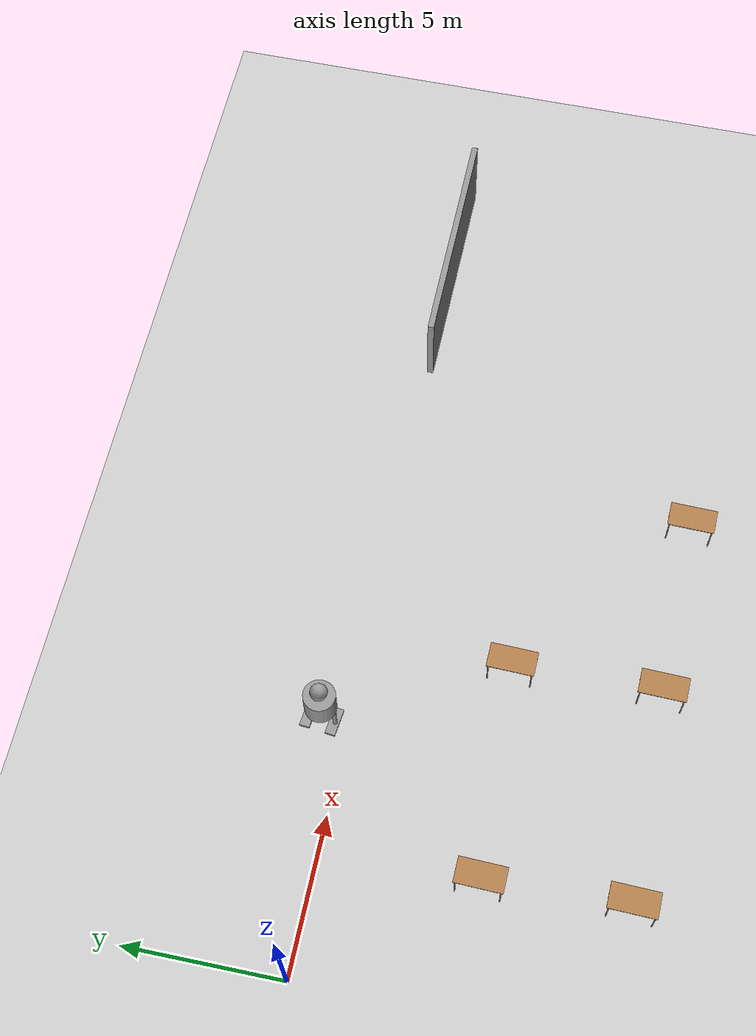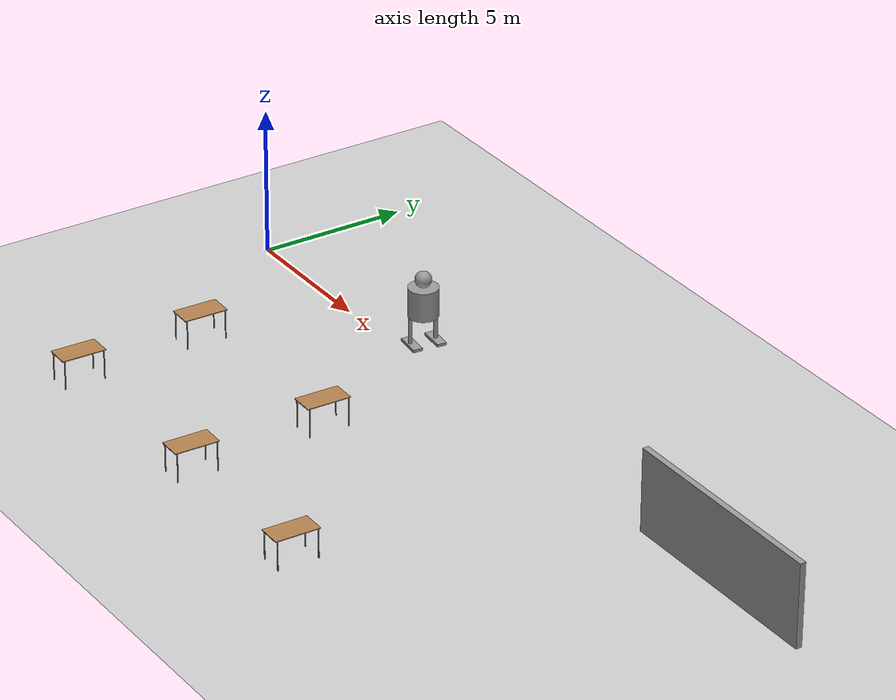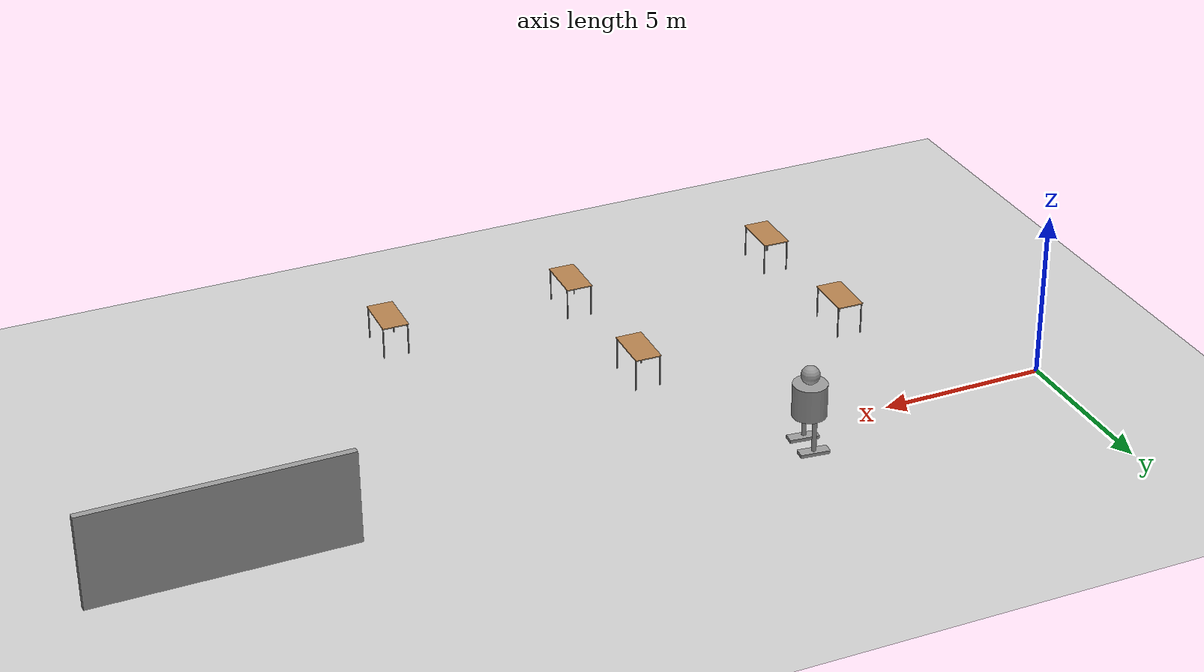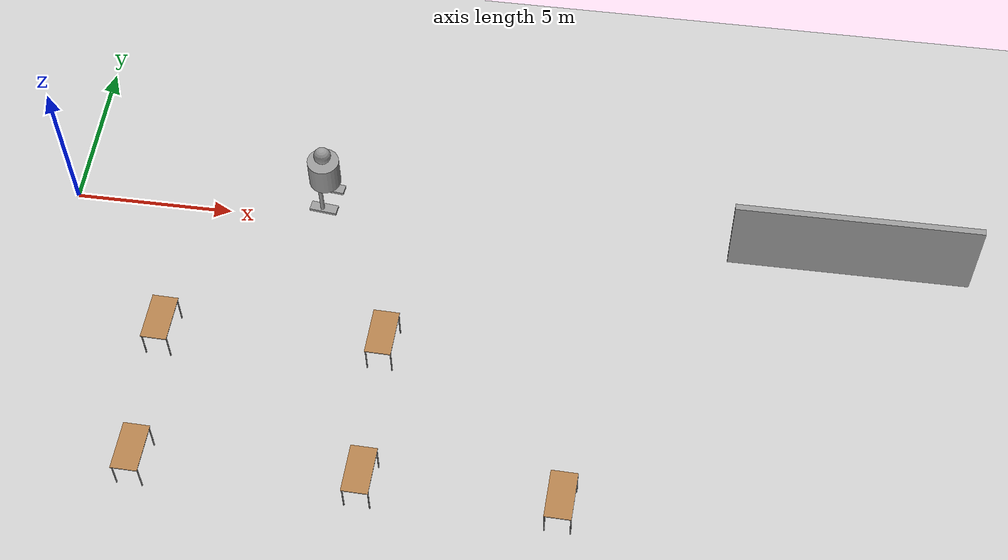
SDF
<sdf version="1.6">
 <world name="default">
  <model name="ground_plane">
   <static>1</static>
   <link name="link">
    <collision name="collision">
     <geometry><plane><normal>0 0 1</normal><size>100 100</size></plane></geometry>
     <surface>
      <contact><collide_bitmask>65535</collide_bitmask></contact>
      <friction><ode><mu>100</mu><mu2>50</mu2></ode></friction>
     </surface>
    </collision>
    <visual name="visual">
     <cast_shadows>0</cast_shadows>
     <geometry><plane><normal>0 0 1</normal><size>100 100</size></plane></geometry>
     <material>
      <script><uri>file://media/materials/scripts/gazebo.material</uri><name>Gazebo/Grey</name></script>
     </material>
    </visual>
   </link>
  </model>
  <model name="table_0">
   <static>1</static>
   <link name="link">
    <collision name="surface">
     <pose>0 0 1 0 -0 0</pose>
     <geometry><box><size>1.5 0.8 0.03</size></box></geometry>
     <surface><friction><ode><mu>0.6</mu><mu2>0.6</mu2></ode></friction></surface>
    </collision>
    <visual name="visual1">
     <pose>0 0 1 0 -0 0</pose>
     <geometry><box><size>1.5 0.8 0.03</size></box></geometry>
     <material>
      <script><uri>file://media/materials/scripts/gazebo.material</uri><name>Gazebo/Wood</name></script>
     </material>
    </visual>
    <collision name="front_left_leg">
     <pose>0.68 0.38 0.5 0 -0 0</pose>
     <geometry><cylinder><radius>0.02</radius><length>1</length></cylinder></geometry>
    </collision>
    <visual name="front_left_leg">
     <pose>0.68 0.38 0.5 0 -0 0</pose>
     <geometry><cylinder><radius>0.02</radius><length>1</length></cylinder></geometry>
     <material>
      <script><uri>file://media/materials/scripts/gazebo.material</uri><name>Gazebo/Grey</name></script>
     </material>
    </visual>
    <collision name="front_right_leg">
     <pose>0.68 -0.38 0.5 0 -0 0</pose>
     <geometry><cylinder><radius>0.02</radius><length>1</length></cylinder></geometry>
    </collision>
    <visual name="front_right_leg">
     <pose>0.68 -0.38 0.5 0 -0 0</pose>
     <geometry><cylinder><radius>0.02</radius><length>1</length></cylinder></geometry>
     <material>
      <script><uri>file://media/materials/scripts/gazebo.material</uri><name>Gazebo/Grey</name></script>
     </material>
    </visual>
    <collision name="back_right_leg">
     <pose>-0.68 -0.38 0.5 0 -0 0</pose>
     <geometry><cylinder><radius>0.02</radius><length>1</length></cylinder></geometry>
    </collision>
    <visual name="back_right_leg">
     <pose>-0.68 -0.38 0.5 0 -0 0</pose>
     <geometry><cylinder><radius>0.02</radius><length>1</length></cylinder></geometry>
     <material>
      <script><uri>file://media/materials/scripts/gazebo.material</uri><name>Gazebo/Grey</name></script>
     </material>
    </visual>
    <collision name="back_left_leg">
     <pose>-0.68 0.38 0.5 0 -0 0</pose>
     <geometry><cylinder><radius>0.02</radius><length>1</length></cylinder></geometry>
    </collision>
    <visual name="back_left_leg">
     <pose>-0.68 0.38 0.5 0 -0 0</pose>
     <geometry><cylinder><radius>0.02</radius><length>1</length></cylinder></geometry>
     <material>
      <script><uri>file://media/materials/scripts/gazebo.material</uri><name>Gazebo/Grey</name></script>
     </material>
    </visual>
   </link>
   <pose>16.6404 -9.26334 0 0 -0 1.54682</pose>
  </model>
  <model name="grey_wall">
   <static>1</static>
   <link name="link">
    <pose>0 0 1.4 0 -0 0</pose>
    <collision name="collision"><geometry><box><size>7.5 0.2 2.8</size></box></geometry></collision>
    <visual name="visual">
     <cast_shadows>0</cast_shadows>
     <geometry><box><size>7.5 0.2 2.8</size></box></geometry>
     <material>
      <script>
       <uri>model://grey_wall/materials/scripts</uri>
       <uri>model://grey_wall/materials/textures</uri>
       <name>vrc/grey_wall</name>
      </script>
     </material>
    </visual>
   </link>
   <pose>24.5737 0.166577 0 0 -0 0</pose>
  </model>
  <model name="table_0_clone">
   <static>1</static>
   <link name="link">
    <collision name="surface">
     <pose>0 0 1 0 -0 0</pose>
     <geometry><box><size>1.5 0.8 0.03</size></box></geometry>
     <surface><friction><ode><mu>0.6</mu><mu2>0.6</mu2></ode></friction></surface>
    </collision>
    <visual name="visual1">
     <pose>0 0 1 0 -0 0</pose>
     <geometry><box><size>1.5 0.8 0.03</size></box></geometry>
     <material>
      <script><uri>file://media/materials/scripts/gazebo.material</uri><name>Gazebo/Wood</name></script>
     </material>
    </visual>
    <collision name="front_left_leg">
     <pose>0.68 0.38 0.5 0 -0 0</pose>
     <geometry><cylinder><radius>0.02</radius><length>1</length></cylinder></geometry>
    </collision>
    <visual name="front_left_leg">
     <pose>0.68 0.38 0.5 0 -0 0</pose>
     <geometry><cylinder><radius>0.02</radius><length>1</length></cylinder></geometry>
     <material>
      <script><uri>file://media/materials/scripts/gazebo.material</uri><name>Gazebo/Grey</name></script>
     </material>
    </visual>
    <collision name="front_right_leg">
     <pose>0.68 -0.38 0.5 0 -0 0</pose>
     <geometry><cylinder><radius>0.02</radius><length>1</length></cylinder></geometry>
    </collision>
    <visual name="front_right_leg">
     <pose>0.68 -0.38 0.5 0 -0 0</pose>
     <geometry><cylinder><radius>0.02</radius><length>1</length></cylinder></geometry>
     <material>
      <script><uri>file://media/materials/scripts/gazebo.material</uri><name>Gazebo/Grey</name></script>
     </material>
    </visual>
    <collision name="back_right_leg">
     <pose>-0.68 -0.38 0.5 0 -0 0</pose>
     <geometry><cylinder><radius>0.02</radius><length>1</length></cylinder></geometry>
    </collision>
    <visual name="back_right_leg">
     <pose>-0.68 -0.38 0.5 0 -0 0</pose>
     <geometry><cylinder><radius>0.02</radius><length>1</length></cylinder></geometry>
     <material>
      <script><uri>file://media/materials/scripts/gazebo.material</uri><name>Gazebo/Grey</name></script>
     </material>
    </visual>
    <collision name="back_left_leg">
     <pose>-0.68 0.38 0.5 0 -0 0</pose>
     <geometry><cylinder><radius>0.02</radius><length>1</length></cylinder></geometry>
    </collision>
    <visual name="back_left_leg">
     <pose>-0.68 0.38 0.5 0 -0 0</pose>
     <geometry><cylinder><radius>0.02</radius><length>1</length></cylinder></geometry>
     <material>
      <script><uri>file://media/materials/scripts/gazebo.material</uri><name>Gazebo/Grey</name></script>
     </material>
    </visual>
   </link>
   <pose>10.8123 -9.19045 0 0 -0 1.54682</pose>
  </model>
  <model name="table_0_clone_0">
   <static>1</static>
   <link name="link">
    <collision name="surface">
     <pose>0 0 1 0 -0 0</pose>
     <geometry><box><size>1.5 0.8 0.03</size></box></geometry>
     <surface><friction><ode><mu>0.6</mu><mu2>0.6</mu2></ode></friction></surface>
    </collision>
    <visual name="visual1">
     <pose>0 0 1 0 -0 0</pose>
     <geometry><box><size>1.5 0.8 0.03</size></box></geometry>
     <material>
      <script><uri>file://media/materials/scripts/gazebo.material</uri><name>Gazebo/Wood</name></script>
     </material>
    </visual>
    <collision name="front_left_leg">
     <pose>0.68 0.38 0.5 0 -0 0</pose>
     <geometry><cylinder><radius>0.02</radius><length>1</length></cylinder></geometry>
    </collision>
    <visual name="front_left_leg">
     <pose>0.68 0.38 0.5 0 -0 0</pose>
     <geometry><cylinder><radius>0.02</radius><length>1</length></cylinder></geometry>
     <material>
      <script><uri>file://media/materials/scripts/gazebo.material</uri><name>Gazebo/Grey</name></script>
     </material>
    </visual>
    <collision name="front_right_leg">
     <pose>0.68 -0.38 0.5 0 -0 0</pose>
     <geometry><cylinder><radius>0.02</radius><length>1</length></cylinder></geometry>
    </collision>
    <visual name="front_right_leg">
     <pose>0.68 -0.38 0.5 0 -0 0</pose>
     <geometry><cylinder><radius>0.02</radius><length>1</length></cylinder></geometry>
     <material>
      <script><uri>file://media/materials/scripts/gazebo.material</uri><name>Gazebo/Grey</name></script>
     </material>
    </visual>
    <collision name="back_right_leg">
     <pose>-0.68 -0.38 0.5 0 -0 0</pose>
     <geometry><cylinder><radius>0.02</radius><length>1</length></cylinder></geometry>
    </collision>
    <visual name="back_right_leg">
     <pose>-0.68 -0.38 0.5 0 -0 0</pose>
     <geometry><cylinder><radius>0.02</radius><length>1</length></cylinder></geometry>
     <material>
      <script><uri>file://media/materials/scripts/gazebo.material</uri><name>Gazebo/Grey</name></script>
     </material>
    </visual>
    <collision name="back_left_leg">
     <pose>-0.68 0.38 0.5 0 -0 0</pose>
     <geometry><cylinder><radius>0.02</radius><length>1</length></cylinder></geometry>
    </collision>
    <visual name="back_left_leg">
     <pose>-0.68 0.38 0.5 0 -0 0</pose>
     <geometry><cylinder><radius>0.02</radius><length>1</length></cylinder></geometry>
     <material>
      <script><uri>file://media/materials/scripts/gazebo.material</uri><name>Gazebo/Grey</name></script>
     </material>
    </visual>
   </link>
   <pose>4.13003 -9.2976 0 0 -0 1.54682</pose>
  </model>
  <model name="table_0_clone_3">
   <static>1</static>
   <link name="link">
    <collision name="surface">
     <pose>0 0 1 0 -0 0</pose>
     <geometry><box><size>1.5 0.8 0.03</size></box></geometry>
     <surface><friction><ode><mu>0.6</mu><mu2>0.6</mu2></ode></friction></surface>
    </collision>
    <visual name="visual1">
     <pose>0 0 1 0 -0 0</pose>
     <geometry><box><size>1.5 0.8 0.03</size></box></geometry>
     <material>
      <script><uri>file://media/materials/scripts/gazebo.material</uri><name>Gazebo/Wood</name></script>
     </material>
    </visual>
    <collision name="front_left_leg">
     <pose>0.68 0.38 0.5 0 -0 0</pose>
     <geometry><cylinder><radius>0.02</radius><length>1</length></cylinder></geometry>
    </collision>
    <visual name="front_left_leg">
     <pose>0.68 0.38 0.5 0 -0 0</pose>
     <geometry><cylinder><radius>0.02</radius><length>1</length></cylinder></geometry>
     <material>
      <script><uri>file://media/materials/scripts/gazebo.material</uri><name>Gazebo/Grey</name></script>
     </material>
    </visual>
    <collision name="front_right_leg">
     <pose>0.68 -0.38 0.5 0 -0 0</pose>
     <geometry><cylinder><radius>0.02</radius><length>1</length></cylinder></geometry>
    </collision>
    <visual name="front_right_leg">
     <pose>0.68 -0.38 0.5 0 -0 0</pose>
     <geometry><cylinder><radius>0.02</radius><length>1</length></cylinder></geometry>
     <material>
      <script><uri>file://media/materials/scripts/gazebo.material</uri><name>Gazebo/Grey</name></script>
     </material>
    </visual>
    <collision name="back_right_leg">
     <pose>-0.68 -0.38 0.5 0 -0 0</pose>
     <geometry><cylinder><radius>0.02</radius><length>1</length></cylinder></geometry>
    </collision>
    <visual name="back_right_leg">
     <pose>-0.68 -0.38 0.5 0 -0 0</pose>
     <geometry><cylinder><radius>0.02</radius><length>1</length></cylinder></geometry>
     <material>
      <script><uri>file://media/materials/scripts/gazebo.material</uri><name>Gazebo/Grey</name></script>
     </material>
    </visual>
    <collision name="back_left_leg">
     <pose>-0.68 0.38 0.5 0 -0 0</pose>
     <geometry><cylinder><radius>0.02</radius><length>1</length></cylinder></geometry>
    </collision>
    <visual name="back_left_leg">
     <pose>-0.68 0.38 0.5 0 -0 0</pose>
     <geometry><cylinder><radius>0.02</radius><length>1</length></cylinder></geometry>
     <material>
      <script><uri>file://media/materials/scripts/gazebo.material</uri><name>Gazebo/Grey</name></script>
     </material>
    </visual>
   </link>
   <pose>3.9388 -4.84343 0 0 -0 1.54682</pose>
  </model>
  <model name="table_0_clone_4">
   <static>1</static>
   <link name="link">
    <collision name="surface">
     <pose>0 0 1 0 -0 0</pose>
     <geometry><box><size>1.5 0.8 0.03</size></box></geometry>
     <surface><friction><ode><mu>0.6</mu><mu2>0.6</mu2></ode></friction></surface>
    </collision>
    <visual name="visual1">
     <pose>0 0 1 0 -0 0</pose>
     <geometry><box><size>1.5 0.8 0.03</size></box></geometry>
     <material>
      <script><uri>file://media/materials/scripts/gazebo.material</uri><name>Gazebo/Wood</name></script>
     </material>
    </visual>
    <collision name="front_left_leg">
     <pose>0.68 0.38 0.5 0 -0 0</pose>
     <geometry><cylinder><radius>0.02</radius><length>1</length></cylinder></geometry>
    </collision>
    <visual name="front_left_leg">
     <pose>0.68 0.38 0.5 0 -0 0</pose>
     <geometry><cylinder><radius>0.02</radius><length>1</length></cylinder></geometry>
     <material>
      <script><uri>file://media/materials/scripts/gazebo.material</uri><name>Gazebo/Grey</name></script>
     </material>
    </visual>
    <collision name="front_right_leg">
     <pose>0.68 -0.38 0.5 0 -0 0</pose>
     <geometry><cylinder><radius>0.02</radius><length>1</length></cylinder></geometry>
    </collision>
    <visual name="front_right_leg">
     <pose>0.68 -0.38 0.5 0 -0 0</pose>
     <geometry><cylinder><radius>0.02</radius><length>1</length></cylinder></geometry>
     <material>
      <script><uri>file://media/materials/scripts/gazebo.material</uri><name>Gazebo/Grey</name></script>
     </material>
    </visual>
    <collision name="back_right_leg">
     <pose>-0.68 -0.38 0.5 0 -0 0</pose>
     <geometry><cylinder><radius>0.02</radius><length>1</length></cylinder></geometry>
    </collision>
    <visual name="back_right_leg">
     <pose>-0.68 -0.38 0.5 0 -0 0</pose>
     <geometry><cylinder><radius>0.02</radius><length>1</length></cylinder></geometry>
     <material>
      <script><uri>file://media/materials/scripts/gazebo.material</uri><name>Gazebo/Grey</name></script>
     </material>
    </visual>
    <collision name="back_left_leg">
     <pose>-0.68 0.38 0.5 0 -0 0</pose>
     <geometry><cylinder><radius>0.02</radius><length>1</length></cylinder></geometry>
    </collision>
    <visual name="back_left_leg">
     <pose>-0.68 0.38 0.5 0 -0 0</pose>
     <geometry><cylinder><radius>0.02</radius><length>1</length></cylinder></geometry>
     <material>
      <script><uri>file://media/materials/scripts/gazebo.material</uri><name>Gazebo/Grey</name></script>
     </material>
    </visual>
   </link>
   <pose>10.6876 -4.5176 0 0 -0 1.54682</pose>
  </model>
  <model name="HumanoidRobot">
   <link name="link_0">
    <pose>0.00607 -0.402485 -0.763094 0 -0 0</pose>
    <inertial>
     <mass>0.0269632</mass>
     <inertia>
      <ixx>0.00025348</ixx>
      <ixy>0</ixy>
      <ixz>0</ixz>
      <iyy>0.00171945</iyy>
      <iyz>0</iyz>
      <izz>0.00193117</izz>
     </inertia>
    </inertial>
    <visual name="visual">
     <geometry><box><size>0.869453 0.321744 0.096398</size></box></geometry>
     <material>
      <lighting>1</lighting>
      <script><uri>file://media/materials/scripts/gazebo.material</uri><name>Gazebo/Grey</name></script>
      <shader type="pixel"><normal_map>__default__</normal_map></shader>
      <ambient>0.3 0.3 0.3 1</ambient>
      <diffuse>0.7 0.7 0.7 1</diffuse>
      <specular>0.01 0.01 0.01 1</specular>
      <emissive>0 0 0 1</emissive>
     </material>
    </visual>
    <collision name="collision">
     <geometry><box><size>0.869453 0.321744 0.096398</size></box></geometry>
     <surface>
      <friction>
       <ode><mu>1</mu><mu2>1</mu2><fdir1>0 0 0</fdir1><slip1>0</slip1><slip2>0</slip2></ode>
       <torsional>
        <coefficient>1</coefficient>
        <patch_radius>0</patch_radius>
        <surface_radius>0</surface_radius>
        <use_patch_radius>1</use_patch_radius>
        <ode><slip>0</slip></ode>
       </torsional>
      </friction>
      <bounce><restitution_coefficient>0</restitution_coefficient><threshold>1e+06</threshold></bounce>
      <contact>
       <collide_without_contact>0</collide_without_contact>
       <collide_without_contact_bitmask>1</collide_without_contact_bitmask>
       <collide_bitmask>1</collide_bitmask>
       <ode>
        <soft_cfm>0</soft_cfm>
        <soft_erp>0.2</soft_erp>
        <kp>1e+13</kp>
        <kd>1</kd>
        <max_vel>0.01</max_vel>
        <min_depth>0</min_depth>
       </ode>
       <bullet>
        <split_impulse>1</split_impulse>
        <split_impulse_penetration_threshold>-0.01</split_impulse_penetration_threshold>
        <soft_cfm>0</soft_cfm>
        <soft_erp>0.2</soft_erp>
        <kp>1e+13</kp>
        <kd>1</kd>
       </bullet>
      </contact>
     </surface>
    </collision>
   </link>
   <link name="link_0_clone">
    <pose>0.00607 0.426759 -0.763093 0 -0 0</pose>
    <inertial>
     <mass>0.0269632</mass>
     <inertia>
      <ixx>0.00025348</ixx>
      <ixy>0</ixy>
      <ixz>0</ixz>
      <iyy>0.00171945</iyy>
      <iyz>0</iyz>
      <izz>0.00193117</izz>
     </inertia>
    </inertial>
    <visual name="visual">
     <geometry><box><size>0.869453 0.321744 0.096398</size></box></geometry>
     <material>
      <lighting>1</lighting>
      <script><uri>file://media/materials/scripts/gazebo.material</uri><name>Gazebo/Grey</name></script>
      <shader type="pixel"><normal_map>__default__</normal_map></shader>
      <ambient>0.3 0.3 0.3 1</ambient>
      <diffuse>0.7 0.7 0.7 1</diffuse>
      <specular>0.01 0.01 0.01 1</specular>
      <emissive>0 0 0 1</emissive>
     </material>
    </visual>
    <collision name="collision">
     <geometry><box><size>0.869453 0.321744 0.096398</size></box></geometry>
     <surface>
      <friction>
       <ode><mu>1</mu><mu2>1</mu2><fdir1>0 0 0</fdir1><slip1>0</slip1><slip2>0</slip2></ode>
       <torsional>
        <coefficient>1</coefficient>
        <patch_radius>0</patch_radius>
        <surface_radius>0</surface_radius>
        <use_patch_radius>1</use_patch_radius>
        <ode><slip>0</slip></ode>
       </torsional>
      </friction>
      <bounce><restitution_coefficient>0</restitution_coefficient><threshold>1e+06</threshold></bounce>
      <contact>
       <collide_without_contact>0</collide_without_contact>
       <collide_without_contact_bitmask>1</collide_without_contact_bitmask>
       <collide_bitmask>1</collide_bitmask>
       <ode>
        <soft_cfm>0</soft_cfm>
        <soft_erp>0.2</soft_erp>
        <kp>1e+13</kp>
        <kd>1</kd>
        <max_vel>0.01</max_vel>
        <min_depth>0</min_depth>
       </ode>
       <bullet>
        <split_impulse>1</split_impulse>
        <split_impulse_penetration_threshold>-0.01</split_impulse_penetration_threshold>
        <soft_cfm>0</soft_cfm>
        <soft_erp>0.2</soft_erp>
        <kp>1e+13</kp>
        <kd>1</kd>
       </bullet>
      </contact>
     </surface>
    </collision>
   </link>
   <link name="link_1">
    <pose>-0.030345 -0.4389 -0.311292 0 -0 0</pose>
    <inertial>
     <mass>0.0180474</mass>
     <inertia>
      <ixx>0.00152431</ixx>
      <ixy>0</ixy>
      <ixz>0</ixz>
      <iyy>0.00152431</iyy>
      <iyz>0</iyz>
      <izz>4.07136e-05</izz>
     </inertia>
    </inertial>
    <visual name="visual">
     <geometry><cylinder><radius>0.0671703</radius><length>1</length></cylinder></geometry>
     <material>
      <lighting>1</lighting>
      <script><uri>file://media/materials/scripts/gazebo.material</uri><name>Gazebo/Grey</name></script>
      <shader type="pixel"/>
      <ambient>0.3 0.3 0.3 1</ambient>
      <diffuse>0.7 0.7 0.7 1</diffuse>
      <specular>0.01 0.01 0.01 1</specular>
      <emissive>0 0 0 1</emissive>
     </material>
    </visual>
    <collision name="collision">
     <geometry><cylinder><radius>0.06717</radius><length>1</length></cylinder></geometry>
     <surface>
      <friction>
       <ode><mu>1</mu><mu2>1</mu2><fdir1>0 0 0</fdir1><slip1>0</slip1><slip2>0</slip2></ode>
       <torsional>
        <coefficient>1</coefficient>
        <patch_radius>0</patch_radius>
        <surface_radius>0</surface_radius>
        <use_patch_radius>1</use_patch_radius>
        <ode><slip>0</slip></ode>
       </torsional>
      </friction>
      <bounce><restitution_coefficient>0</restitution_coefficient><threshold>1e+06</threshold></bounce>
      <contact>
       <collide_without_contact>0</collide_without_contact>
       <collide_without_contact_bitmask>1</collide_without_contact_bitmask>
       <collide_bitmask>1</collide_bitmask>
       <ode>
        <soft_cfm>0</soft_cfm>
        <soft_erp>0.2</soft_erp>
        <kp>1e+13</kp>
        <kd>1</kd>
        <max_vel>0.01</max_vel>
        <min_depth>0</min_depth>
       </ode>
       <bullet>
        <split_impulse>1</split_impulse>
        <split_impulse_penetration_threshold>-0.01</split_impulse_penetration_threshold>
        <soft_cfm>0</soft_cfm>
        <soft_erp>0.2</soft_erp>
        <kp>1e+13</kp>
        <kd>1</kd>
       </bullet>
      </contact>
     </surface>
    </collision>
   </link>
   <link name="link_1_clone">
    <pose>0.00607 0.426759 -0.311292 0 -0 0</pose>
    <inertial>
     <mass>0.0180474</mass>
     <inertia>
      <ixx>0.00152431</ixx>
      <ixy>0</ixy>
      <ixz>0</ixz>
      <iyy>0.00152431</iyy>
      <iyz>0</iyz>
      <izz>4.07136e-05</izz>
     </inertia>
    </inertial>
    <visual name="visual">
     <geometry><cylinder><radius>0.0671703</radius><length>1</length></cylinder></geometry>
     <material>
      <lighting>1</lighting>
      <script><uri>file://media/materials/scripts/gazebo.material</uri><name>Gazebo/Grey</name></script>
      <shader type="pixel"/>
      <ambient>0.3 0.3 0.3 1</ambient>
      <diffuse>0.7 0.7 0.7 1</diffuse>
      <specular>0.01 0.01 0.01 1</specular>
      <emissive>0 0 0 1</emissive>
     </material>
    </visual>
    <collision name="collision">
     <geometry><cylinder><radius>0.06717</radius><length>1</length></cylinder></geometry>
     <surface>
      <friction>
       <ode><mu>1</mu><mu2>1</mu2><fdir1>0 0 0</fdir1><slip1>0</slip1><slip2>0</slip2></ode>
       <torsional>
        <coefficient>1</coefficient>
        <patch_radius>0</patch_radius>
        <surface_radius>0</surface_radius>
        <use_patch_radius>1</use_patch_radius>
        <ode><slip>0</slip></ode>
       </torsional>
      </friction>
      <bounce><restitution_coefficient>0</restitution_coefficient><threshold>1e+06</threshold></bounce>
      <contact>
       <collide_without_contact>0</collide_without_contact>
       <collide_without_contact_bitmask>1</collide_without_contact_bitmask>
       <collide_bitmask>1</collide_bitmask>
       <ode>
        <soft_cfm>0</soft_cfm>
        <soft_erp>0.2</soft_erp>
        <kp>1e+13</kp>
        <kd>1</kd>
        <max_vel>0.01</max_vel>
        <min_depth>0</min_depth>
       </ode>
       <bullet>
        <split_impulse>1</split_impulse>
        <split_impulse_penetration_threshold>-0.01</split_impulse_penetration_threshold>
        <soft_cfm>0</soft_cfm>
        <soft_erp>0.2</soft_erp>
        <kp>1e+13</kp>
        <kd>1</kd>
       </bullet>
      </contact>
     </surface>
    </collision>
   </link>
   <link name="link_2">
    <pose>0.00607 -0.00607 0.688708 0 -0 0</pose>
    <inertial>
     <mass>1</mass>
     <inertia><ixx>0.145833</ixx><ixy>0</ixy><ixz>0</ixz><iyy>0.145833</iyy><iyz>0</iyz><izz>0.125</izz></inertia>
    </inertial>
    <visual name="visual">
     <geometry><cylinder><radius>0.5</radius><length>1</length></cylinder></geometry>
     <material>
      <lighting>1</lighting>
      <script><uri>file://media/materials/scripts/gazebo.material</uri><name>Gazebo/Grey</name></script>
      <shader type="pixel"/>
      <ambient>0.3 0.3 0.3 1</ambient>
      <diffuse>0.7 0.7 0.7 1</diffuse>
      <specular>0.01 0.01 0.01 1</specular>
      <emissive>0 0 0 1</emissive>
     </material>
    </visual>
    <collision name="collision">
     <geometry><cylinder><radius>0.5</radius><length>1</length></cylinder></geometry>
     <surface>
      <friction>
       <ode><mu>1</mu><mu2>1</mu2><fdir1>0 0 0</fdir1><slip1>0</slip1><slip2>0</slip2></ode>
       <torsional>
        <coefficient>1</coefficient>
        <patch_radius>0</patch_radius>
        <surface_radius>0</surface_radius>
        <use_patch_radius>1</use_patch_radius>
        <ode><slip>0</slip></ode>
       </torsional>
      </friction>
      <bounce><restitution_coefficient>0</restitution_coefficient><threshold>1e+06</threshold></bounce>
      <contact>
       <collide_without_contact>0</collide_without_contact>
       <collide_without_contact_bitmask>1</collide_without_contact_bitmask>
       <collide_bitmask>1</collide_bitmask>
       <ode>
        <soft_cfm>0</soft_cfm>
        <soft_erp>0.2</soft_erp>
        <kp>1e+13</kp>
        <kd>1</kd>
        <max_vel>0.01</max_vel>
        <min_depth>0</min_depth>
       </ode>
       <bullet>
        <split_impulse>1</split_impulse>
        <split_impulse_penetration_threshold>-0.01</split_impulse_penetration_threshold>
        <soft_cfm>0</soft_cfm>
        <soft_erp>0.2</soft_erp>
        <kp>1e+13</kp>
        <kd>1</kd>
       </bullet>
      </contact>
     </surface>
    </collision>
   </link>
   <link name="link_3">
    <pose>0.00607 -0.00607 1.46007 0 -0 0</pose>
    <inertial>
     <mass>0.159872</mass>
     <inertia>
      <ixx>0.00470902</ixx>
      <ixy>0</ixy>
      <ixz>0</ixz>
      <iyy>0.00470902</iyy>
      <iyz>0</iyz>
      <izz>0.00470902</izz>
     </inertia>
    </inertial>
    <visual name="visual">
     <geometry><sphere><radius>0.271362</radius></sphere></geometry>
     <material>
      <lighting>1</lighting>
      <script><uri>file://media/materials/scripts/gazebo.material</uri><name>Gazebo/Grey</name></script>
      <shader type="pixel"/>
      <ambient>0.3 0.3 0.3 1</ambient>
      <diffuse>0.7 0.7 0.7 1</diffuse>
      <specular>0.01 0.01 0.01 1</specular>
      <emissive>0 0 0 1</emissive>
     </material>
    </visual>
    <collision name="collision">
     <geometry><sphere><radius>0.271362</radius></sphere></geometry>
     <surface>
      <friction>
       <ode><mu>1</mu><mu2>1</mu2><fdir1>0 0 0</fdir1><slip1>0</slip1><slip2>0</slip2></ode>
       <torsional>
        <coefficient>1</coefficient>
        <patch_radius>0</patch_radius>
        <surface_radius>0</surface_radius>
        <use_patch_radius>1</use_patch_radius>
        <ode><slip>0</slip></ode>
       </torsional>
      </friction>
      <bounce><restitution_coefficient>0</restitution_coefficient><threshold>1e+06</threshold></bounce>
      <contact>
       <collide_without_contact>0</collide_without_contact>
       <collide_without_contact_bitmask>1</collide_without_contact_bitmask>
       <collide_bitmask>1</collide_bitmask>
       <ode>
        <soft_cfm>0</soft_cfm>
        <soft_erp>0.2</soft_erp>
        <kp>1e+13</kp>
        <kd>1</kd>
        <max_vel>0.01</max_vel>
        <min_depth>0</min_depth>
       </ode>
       <bullet>
        <split_impulse>1</split_impulse>
        <split_impulse_penetration_threshold>-0.01</split_impulse_penetration_threshold>
        <soft_cfm>0</soft_cfm>
        <soft_erp>0.2</soft_erp>
        <kp>1e+13</kp>
        <kd>1</kd>
       </bullet>
      </contact>
     </surface>
    </collision>
   </link>
   <joint name="link_0_JOINT_0" type="fixed">
    <parent>link_0</parent>
    <child>link_1</child>
    <physics>
     <ode><limit><cfm>0</cfm><erp>0.2</erp></limit><suspension><cfm>0</cfm><erp>0.2</erp></suspension></ode>
    </physics>
   </joint>
   <joint name="link_1_JOINT_1" type="fixed">
    <parent>link_1</parent>
    <child>link_2</child>
    <physics>
     <ode><limit><cfm>0</cfm><erp>0.2</erp></limit><suspension><cfm>0</cfm><erp>0.2</erp></suspension></ode>
    </physics>
   </joint>
   <joint name="link_1_clone_JOINT_3" type="fixed">
    <parent>link_1_clone</parent>
    <child>link_0_clone</child>
    <physics>
     <ode><limit><cfm>0</cfm><erp>0.2</erp></limit><suspension><cfm>0</cfm><erp>0.2</erp></suspension></ode>
    </physics>
   </joint>
   <joint name="link_2_JOINT_2" type="fixed">
    <parent>link_2</parent>
    <child>link_1_clone</child>
    <physics>
     <ode><limit><cfm>0</cfm><erp>0.2</erp></limit><suspension><cfm>0</cfm><erp>0.2</erp></suspension></ode>
    </physics>
   </joint>
   <joint name="link_2_JOINT_5" type="fixed">
    <parent>link_2</parent>
    <child>link_3</child>
    <physics>
     <ode><limit><cfm>0</cfm><erp>0.2</erp></limit><suspension><cfm>0</cfm><erp>0.2</erp></suspension></ode>
    </physics>
   </joint>
   <static>0</static>
   <pose>7.95572 0.872765 0.8113 1.8e-05 1e-06 -0.11113</pose>
  </model>
 </world>
</sdf>
